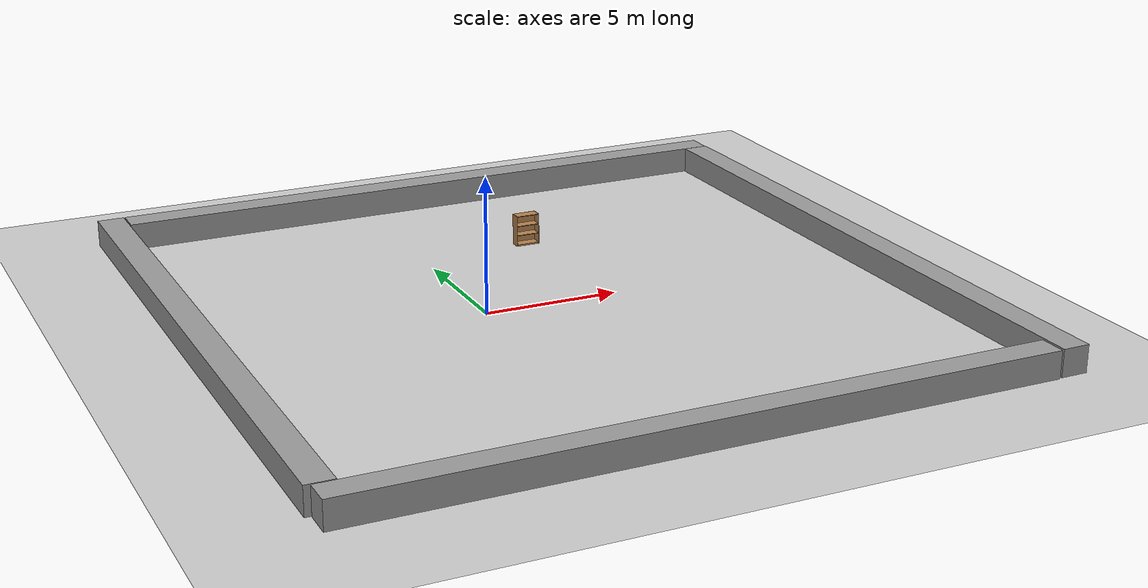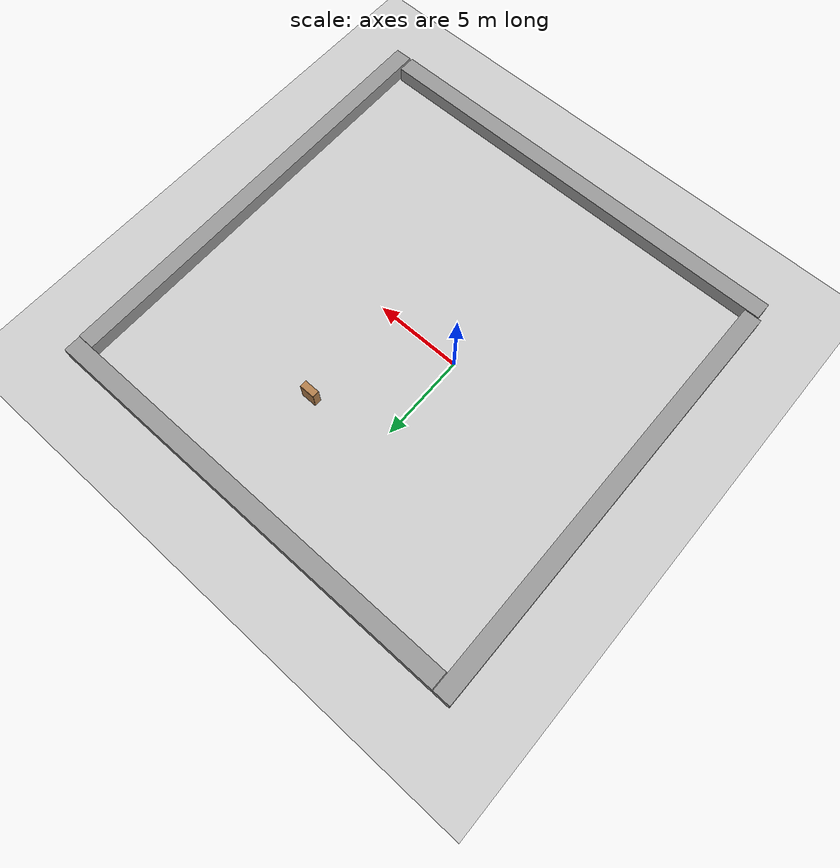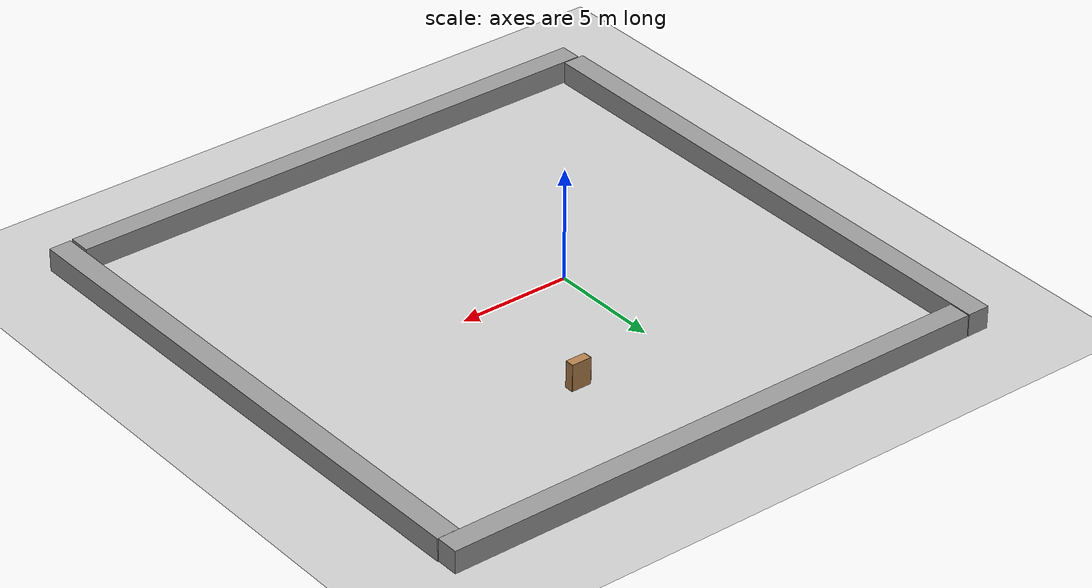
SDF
<sdf version="1.7">
 <world name="default">
  <light name="sun" type="directional">
   <pose>0 0 10 0 -0 0</pose>
   <diffuse>0.8 0.8 0.8 1</diffuse>
   <specular>0.2 0.2 0.2 1</specular>
   <attenuation>
    <range>1000</range>
    <constant>0.9</constant>
    <linear>0.01</linear>
    <quadratic>0.001</quadratic>
   </attenuation>
   <direction>-0.5 0.1 -0.9</direction>
   <spot><inner_angle>0</inner_angle><outer_angle>0</outer_angle><falloff>0</falloff></spot>
  </light>
  <model name="ground_plane">
   <static>1</static>
   <link name="link">
    <collision name="collision">
     <geometry><plane><normal>0 0 1</normal><size>100 100</size></plane></geometry>
     <surface>
      <contact><collide_bitmask>65535</collide_bitmask></contact>
      <friction><ode><mu>100</mu><mu2>50</mu2></ode></friction>
     </surface>
    </collision>
    <visual name="visual">
     <cast_shadows>0</cast_shadows>
     <geometry><plane><normal>0 0 1</normal><size>100 100</size></plane></geometry>
     <material>
      <script><uri>file://media/materials/scripts/gazebo.material</uri><name>Gazebo/Grey</name></script>
     </material>
    </visual>
   </link>
  </model>
  <gravity>0 0 -9.8</gravity>
  <magnetic_field>6e-06 2.3e-05 -4.2e-05</magnetic_field>
  <atmosphere type="adiabatic"/>
  <physics type="ode">
   <max_step_size>0.001</max_step_size>
   <real_time_factor>1</real_time_factor>
   <real_time_update_rate>1000</real_time_update_rate>
  </physics>
  <scene><ambient>0.4 0.4 0.4 1</ambient><background>0.7 0.7 0.7 1</background><shadows>1</shadows></scene>
  <audio><device>default</device></audio>
  <spherical_coordinates>
   <surface_model>EARTH_WGS84</surface_model>
   <latitude_deg>0</latitude_deg>
   <longitude_deg>0</longitude_deg>
   <elevation>0</elevation>
   <heading_deg>0</heading_deg>
  </spherical_coordinates>
  <model name="bookshelf">
   <static>1</static>
   <link name="link">
    <inertial><mass>1</mass></inertial>
    <collision name="back">
     <pose>0 0.005 0.6 0 -0 0</pose>
     <geometry><box><size>0.9 0.01 1.2</size></box></geometry>
    </collision>
    <visual name="visual1">
     <pose>0 0.005 0.6 0 -0 0</pose>
     <geometry><box><size>0.9 0.01 1.2</size></box></geometry>
     <material>
      <script><uri>file://media/materials/scripts/gazebo.material</uri><name>Gazebo/Wood</name></script>
     </material>
    </visual>
    <collision name="left_side">
     <pose>0.45 -0.195 0.6 0 -0 0</pose>
     <geometry><box><size>0.02 0.4 1.2</size></box></geometry>
    </collision>
    <visual name="visual2">
     <pose>0.45 -0.195 0.6 0 -0 0</pose>
     <geometry><box><size>0.02 0.4 1.2</size></box></geometry>
     <material>
      <script><uri>file://media/materials/scripts/gazebo.material</uri><name>Gazebo/Wood</name></script>
     </material>
    </visual>
    <collision name="right_side">
     <pose>-0.45 -0.195 0.6 0 -0 0</pose>
     <geometry><box><size>0.02 0.4 1.2</size></box></geometry>
    </collision>
    <visual name="visual3">
     <pose>-0.45 -0.195 0.6 0 -0 0</pose>
     <geometry><box><size>0.02 0.4 1.2</size></box></geometry>
     <material>
      <script><uri>file://media/materials/scripts/gazebo.material</uri><name>Gazebo/Wood</name></script>
     </material>
    </visual>
    <collision name="bottom">
     <pose>0 -0.195 0.03 0 -0 0</pose>
     <geometry><box><size>0.88 0.4 0.06</size></box></geometry>
    </collision>
    <visual name="visual4">
     <pose>0 -0.195 0.03 0 -0 0</pose>
     <geometry><box><size>0.88 0.4 0.06</size></box></geometry>
     <material>
      <script><uri>file://media/materials/scripts/gazebo.material</uri><name>Gazebo/Wood</name></script>
     </material>
    </visual>
    <collision name="top">
     <pose>0 -0.195 1.19 0 -0 0</pose>
     <geometry><box><size>0.88 0.4 0.02</size></box></geometry>
    </collision>
    <visual name="visual5">
     <pose>0 -0.195 1.19 0 -0 0</pose>
     <geometry><box><size>0.88 0.4 0.02</size></box></geometry>
     <material>
      <script><uri>file://media/materials/scripts/gazebo.material</uri><name>Gazebo/Wood</name></script>
     </material>
    </visual>
    <collision name="low_shelf">
     <pose>0 -0.195 0.43 0 -0 0</pose>
     <geometry><box><size>0.88 0.4 0.02</size></box></geometry>
    </collision>
    <visual name="visual6">
     <pose>0 -0.195 0.43 0 -0 0</pose>
     <geometry><box><size>0.88 0.4 0.02</size></box></geometry>
     <material>
      <script><uri>file://media/materials/scripts/gazebo.material</uri><name>Gazebo/Wood</name></script>
     </material>
    </visual>
    <collision name="high_shelf">
     <pose>0 -0.195 0.8 0 -0 0</pose>
     <geometry><box><size>0.88 0.4 0.02</size></box></geometry>
    </collision>
    <visual name="visual7">
     <pose>0 -0.195 0.8 0 -0 0</pose>
     <geometry><box><size>0.88 0.4 0.02</size></box></geometry>
     <material>
      <script><uri>file://media/materials/scripts/gazebo.material</uri><name>Gazebo/Wood</name></script>
     </material>
    </visual>
   </link>
   <pose>4.30517 6.42295 0 0 -0 0</pose>
  </model>
  <model name="unit_25m_box_clone">
   <link name="link">
    <inertial>
     <mass>1</mass>
     <inertia><ixx>521.7</ixx><ixy>0</ixy><ixz>0</ixz><iyy>1.67</iyy><iyz>0</iyz><izz>521.7</izz></inertia>
    </inertial>
    <visual name="visual">
     <geometry><box><size>1 25 1</size></box></geometry>
     <material>
      <script><name>Gazebo/Grey</name><uri>file://media/materials/scripts/gazebo.material</uri></script>
      <shader type="pixel"><normal_map>__default__</normal_map></shader>
      <ambient>0.3 0.3 0.3 1</ambient>
      <diffuse>0.7 0.7 0.7 1</diffuse>
      <specular>0.01 0.01 0.01 1</specular>
      <emissive>0 0 0 1</emissive>
     </material>
    </visual>
    <collision name="collision">
     <geometry><box><size>1 25 1</size></box></geometry>
     <surface>
      <friction>
       <ode><mu>1</mu><mu2>1</mu2><fdir1>0 0 0</fdir1><slip1>0</slip1><slip2>0</slip2></ode>
       <torsional>
        <coefficient>1</coefficient>
        <patch_radius>0</patch_radius>
        <surface_radius>0</surface_radius>
        <use_patch_radius>1</use_patch_radius>
        <ode><slip>0</slip></ode>
       </torsional>
      </friction>
      <bounce><restitution_coefficient>0</restitution_coefficient><threshold>1e+06</threshold></bounce>
      <contact>
       <collide_without_contact>0</collide_without_contact>
       <collide_without_contact_bitmask>1</collide_without_contact_bitmask>
       <collide_bitmask>1</collide_bitmask>
       <ode>
        <soft_cfm>0</soft_cfm>
        <soft_erp>0.2</soft_erp>
        <kp>1e+13</kp>
        <kd>1</kd>
        <max_vel>0.01</max_vel>
        <min_depth>0</min_depth>
       </ode>
       <bullet>
        <split_impulse>1</split_impulse>
        <split_impulse_penetration_threshold>-0.01</split_impulse_penetration_threshold>
        <soft_cfm>0</soft_cfm>
        <soft_erp>0.2</soft_erp>
        <kp>1e+13</kp>
        <kd>1</kd>
       </bullet>
      </contact>
     </surface>
    </collision>
   </link>
   <static>0</static>
   <pose>-10.1948 0.415006 0.5 0 -0 7e-06</pose>
  </model>
  <model name="unit_25m_box_clone_0">
   <link name="link">
    <inertial>
     <mass>1</mass>
     <inertia><ixx>521.7</ixx><ixy>0</ixy><ixz>0</ixz><iyy>1.67</iyy><iyz>0</iyz><izz>521.7</izz></inertia>
    </inertial>
    <visual name="visual">
     <geometry><box><size>1 25 1</size></box></geometry>
     <material>
      <script><name>Gazebo/Grey</name><uri>file://media/materials/scripts/gazebo.material</uri></script>
      <shader type="pixel"><normal_map>__default__</normal_map></shader>
      <ambient>0.3 0.3 0.3 1</ambient>
      <diffuse>0.7 0.7 0.7 1</diffuse>
      <specular>0.01 0.01 0.01 1</specular>
      <emissive>0 0 0 1</emissive>
     </material>
    </visual>
    <collision name="collision">
     <geometry><box><size>1 25 1</size></box></geometry>
     <surface>
      <friction>
       <ode><mu>1</mu><mu2>1</mu2><fdir1>0 0 0</fdir1><slip1>0</slip1><slip2>0</slip2></ode>
       <torsional>
        <coefficient>1</coefficient>
        <patch_radius>0</patch_radius>
        <surface_radius>0</surface_radius>
        <use_patch_radius>1</use_patch_radius>
        <ode><slip>0</slip></ode>
       </torsional>
      </friction>
      <bounce><restitution_coefficient>0</restitution_coefficient><threshold>1e+06</threshold></bounce>
      <contact>
       <collide_without_contact>0</collide_without_contact>
       <collide_without_contact_bitmask>1</collide_without_contact_bitmask>
       <collide_bitmask>1</collide_bitmask>
       <ode>
        <soft_cfm>0</soft_cfm>
        <soft_erp>0.2</soft_erp>
        <kp>1e+13</kp>
        <kd>1</kd>
        <max_vel>0.01</max_vel>
        <min_depth>0</min_depth>
       </ode>
       <bullet>
        <split_impulse>1</split_impulse>
        <split_impulse_penetration_threshold>-0.01</split_impulse_penetration_threshold>
        <soft_cfm>0</soft_cfm>
        <soft_erp>0.2</soft_erp>
        <kp>1e+13</kp>
        <kd>1</kd>
       </bullet>
      </contact>
     </surface>
    </collision>
   </link>
   <static>0</static>
   <pose>2.85135 12.4226 0.5 0 -0 1.5712</pose>
  </model>
  <model name="unit_25m_box_clone_1">
   <link name="link">
    <inertial>
     <mass>1</mass>
     <inertia><ixx>521.7</ixx><ixy>0</ixy><ixz>0</ixz><iyy>1.67</iyy><iyz>0</iyz><izz>521.7</izz></inertia>
    </inertial>
    <visual name="visual">
     <geometry><box><size>1 25 1</size></box></geometry>
     <material>
      <script><name>Gazebo/Grey</name><uri>file://media/materials/scripts/gazebo.material</uri></script>
      <shader type="pixel"><normal_map>__default__</normal_map></shader>
      <ambient>0.3 0.3 0.3 1</ambient>
      <diffuse>0.7 0.7 0.7 1</diffuse>
      <specular>0.01 0.01 0.01 1</specular>
      <emissive>0 0 0 1</emissive>
     </material>
    </visual>
    <collision name="collision">
     <geometry><box><size>1 25 1</size></box></geometry>
     <surface>
      <friction>
       <ode><mu>1</mu><mu2>1</mu2><fdir1>0 0 0</fdir1><slip1>0</slip1><slip2>0</slip2></ode>
       <torsional>
        <coefficient>1</coefficient>
        <patch_radius>0</patch_radius>
        <surface_radius>0</surface_radius>
        <use_patch_radius>1</use_patch_radius>
        <ode><slip>0</slip></ode>
       </torsional>
      </friction>
      <bounce><restitution_coefficient>0</restitution_coefficient><threshold>1e+06</threshold></bounce>
      <contact>
       <collide_without_contact>0</collide_without_contact>
       <collide_without_contact_bitmask>1</collide_without_contact_bitmask>
       <collide_bitmask>1</collide_bitmask>
       <ode>
        <soft_cfm>0</soft_cfm>
        <soft_erp>0.2</soft_erp>
        <kp>1e+13</kp>
        <kd>1</kd>
        <max_vel>0.01</max_vel>
        <min_depth>0</min_depth>
       </ode>
       <bullet>
        <split_impulse>1</split_impulse>
        <split_impulse_penetration_threshold>-0.01</split_impulse_penetration_threshold>
        <soft_cfm>0</soft_cfm>
        <soft_erp>0.2</soft_erp>
        <kp>1e+13</kp>
        <kd>1</kd>
       </bullet>
      </contact>
     </surface>
    </collision>
   </link>
   <static>0</static>
   <pose>2.01397 -12.6308 0.5 -0 -0 -1.57056</pose>
  </model>
  <model name="unit_25m_box_clone_clone">
   <link name="link">
    <inertial>
     <mass>1</mass>
     <inertia><ixx>521.7</ixx><ixy>0</ixy><ixz>0</ixz><iyy>1.67</iyy><iyz>0</iyz><izz>521.7</izz></inertia>
    </inertial>
    <visual name="visual">
     <geometry><box><size>1 25 1</size></box></geometry>
     <material>
      <script><name>Gazebo/Grey</name><uri>file://media/materials/scripts/gazebo.material</uri></script>
      <shader type="pixel"><normal_map>__default__</normal_map></shader>
      <ambient>0.3 0.3 0.3 1</ambient>
      <diffuse>0.7 0.7 0.7 1</diffuse>
      <specular>0.01 0.01 0.01 1</specular>
      <emissive>0 0 0 1</emissive>
     </material>
    </visual>
    <collision name="collision">
     <geometry><box><size>1 25 1</size></box></geometry>
     <surface>
      <friction>
       <ode><mu>1</mu><mu2>1</mu2><fdir1>0 0 0</fdir1><slip1>0</slip1><slip2>0</slip2></ode>
       <torsional>
        <coefficient>1</coefficient>
        <patch_radius>0</patch_radius>
        <surface_radius>0</surface_radius>
        <use_patch_radius>1</use_patch_radius>
        <ode><slip>0</slip></ode>
       </torsional>
      </friction>
      <bounce><restitution_coefficient>0</restitution_coefficient><threshold>1e+06</threshold></bounce>
      <contact>
       <collide_without_contact>0</collide_without_contact>
       <collide_without_contact_bitmask>1</collide_without_contact_bitmask>
       <collide_bitmask>1</collide_bitmask>
       <ode>
        <soft_cfm>0</soft_cfm>
        <soft_erp>0.2</soft_erp>
        <kp>1e+13</kp>
        <kd>1</kd>
        <max_vel>0.01</max_vel>
        <min_depth>0</min_depth>
       </ode>
       <bullet>
        <split_impulse>1</split_impulse>
        <split_impulse_penetration_threshold>-0.01</split_impulse_penetration_threshold>
        <soft_cfm>0</soft_cfm>
        <soft_erp>0.2</soft_erp>
        <kp>1e+13</kp>
        <kd>1</kd>
       </bullet>
      </contact>
     </surface>
    </collision>
   </link>
   <static>0</static>
   <pose>15.0069 -0.576087 0.499999 -3.14159 1.57079 -3.13232</pose>
  </model>
 </world>
</sdf>
